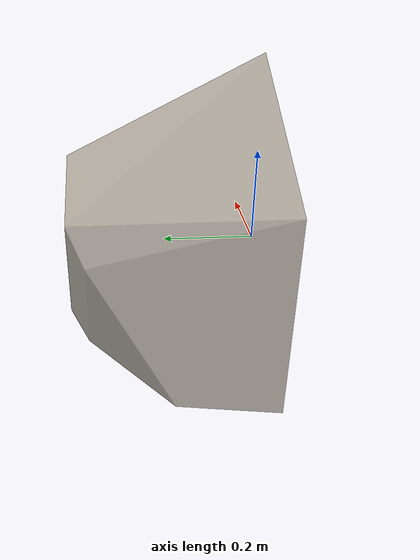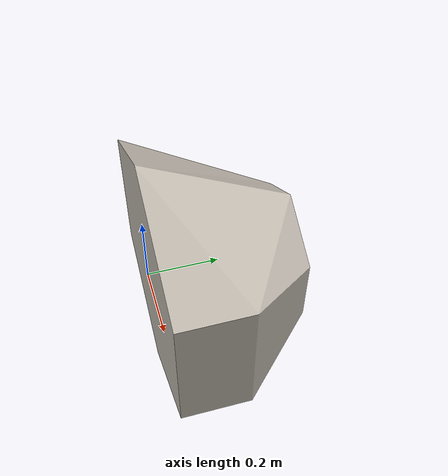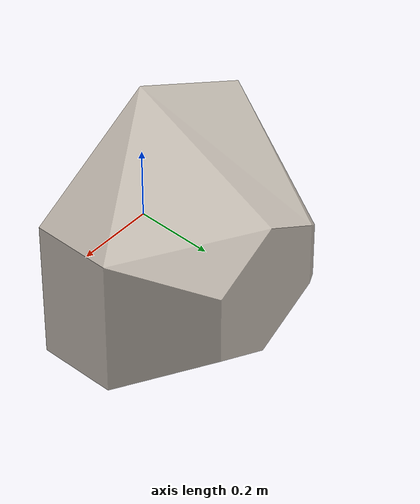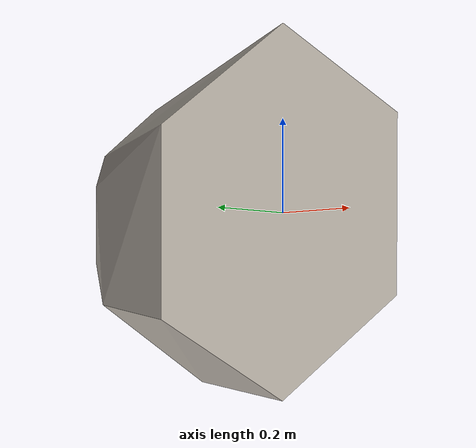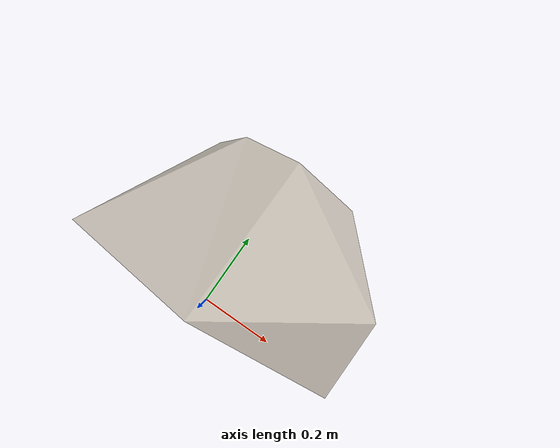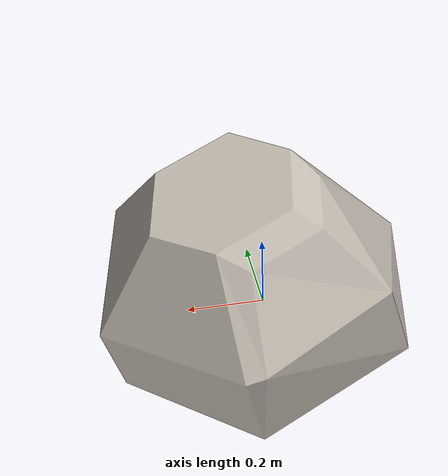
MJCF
<mujoco model="rock_B">
  <default>
    <default class="visual">
      <geom group="2" type="mesh" contype="0" conaffinity="0" />
    </default>
    <default class="collision">
      <geom group="3" type="mesh" />
    </default>
  </default>
  <asset>
    <texture type="2d" name="rock_B_spacebits_texture" file="spacebits_texture.png" />
    <material name="rock_B_spacebits_texture" texture="rock_B_spacebits_texture" specular="0.50196078" shininess="0.15999998099999999" />
    <mesh file="rock_B.obj" name="rock_B_rock_B" />
  </asset>
  <worldbody>
    <body name="rock_B">
      <geom material="rock_B_spacebits_texture" mesh="rock_B_rock_B" class="visual" />
      <geom mesh="rock_B_rock_B" class="collision" />
    </body>
  </worldbody>
</mujoco>
